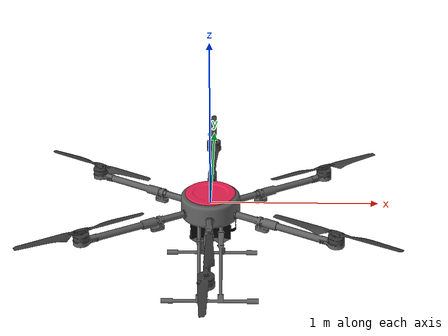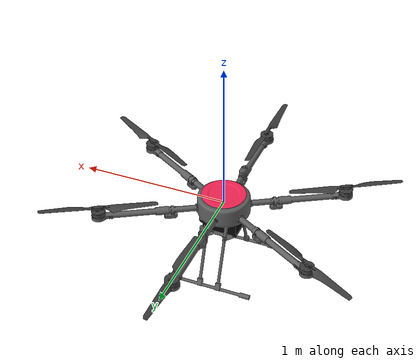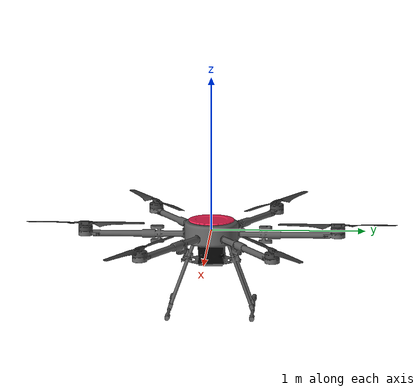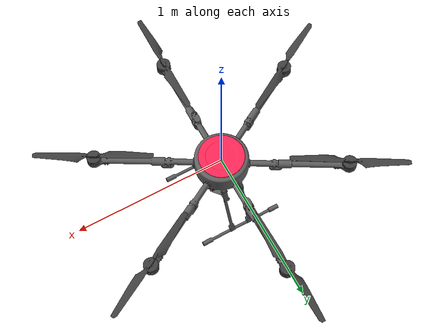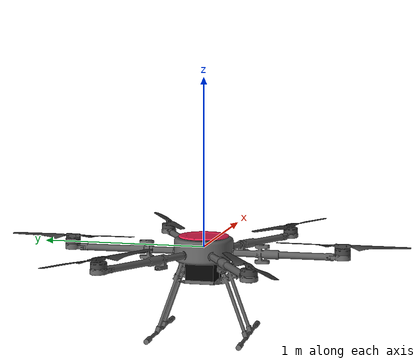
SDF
<sdf version='1.10'>
  <model name='apex'>
    <link name='base_link'>
      <inertial>
        <pose>3.8021336459765633e-18 1.9010668229882809e-18 -0.078047945205479446 0 0 0</pose>
        <mass>14.6</mass>
        <inertia>
          <ixx>0.66679253877643629</ixx>
          <ixy>-5.7811611079981693e-05</ixy>
          <ixz>0.0001125763919399972</ixz>
          <iyy>0.62684588709979616</iyy>
          <iyz>-7.6852716500013487e-06</iyz>
          <izz>0.80883708094223006</izz>
        </inertia>
      </inertial>
      <collision name='base_link_fixed_joint_lump__body_link_collision'>
        <pose>0 0 -0.012699999999999999 0 0 0</pose>
        <geometry>
          <cylinder>
            <length>0.13500000000000001</length>
            <radius>0.17649999999999999</radius>
          </cylinder>
        </geometry>
      </collision>
      <collision name='base_link_fixed_joint_lump__body_link_collision_1'>
        <pose>0 0.27300000000000002 -0.5212 0 1.5707963267948966 0</pose>
        <geometry>
          <cylinder>
            <length>0.58599999999999997</length>
            <radius>0.016</radius>
          </cylinder>
        </geometry>
      </collision>
      <collision name='base_link_fixed_joint_lump__body_link_collision_2'>
        <pose>0.065000000000000002 -0.18433099999999999 -0.27758500000000003 -0.3490658503988659 0 0</pose>
        <geometry>
          <cylinder>
            <length>0.45000000000000001</length>
            <radius>0.01</radius>
          </cylinder>
        </geometry>
      </collision>
      <collision name='base_link_fixed_joint_lump__body_link_collision_3'>
        <pose>-0.065000000000000002 -0.18433099999999999 -0.27758500000000003 -0.3490658503988659 0 0</pose>
        <geometry>
          <cylinder>
            <length>0.45000000000000001</length>
            <radius>0.01</radius>
          </cylinder>
        </geometry>
      </collision>
      <collision name='base_link_fixed_joint_lump__body_link_collision_4'>
        <pose>0 -0.27300000000000002 -0.5212 0 1.5707963267948966 0</pose>
        <geometry>
          <cylinder>
            <length>0.58599999999999997</length>
            <radius>0.016</radius>
          </cylinder>
        </geometry>
      </collision>
      <collision name='base_link_fixed_joint_lump__body_link_collision_5'>
        <pose>0.065000000000000002 0.18433099999999999 -0.27758500000000003 0.3490658503988659 0 0</pose>
        <geometry>
          <cylinder>
            <length>0.45000000000000001</length>
            <radius>0.01</radius>
          </cylinder>
        </geometry>
      </collision>
      <collision name='base_link_fixed_joint_lump__body_link_collision_6'>
        <pose>-0.065000000000000002 0.18433099999999999 -0.27758500000000003 0.3490658503988659 0 0</pose>
        <geometry>
          <cylinder>
            <length>0.45000000000000001</length>
            <radius>0.01</radius>
          </cylinder>
        </geometry>
      </collision>
      <collision name='base_link_fixed_joint_lump__arm_0_collision_7'>
        <pose>0 0.51600000000000001 -0.029999999999999999 1.5707963267948959 0 0</pose>
        <geometry>
          <cylinder>
            <length>0.69999999999999996</length>
            <radius>0.025000000000000001</radius>
          </cylinder>
        </geometry>
      </collision>
      <collision name='base_link_fixed_joint_lump__arm_1_collision_8'>
        <pose>-0.44686910835277027 0.25800000000000012 -0.029999999999999999 1.570796326794897 5.5511151231257827e-17 1.0471975511965981</pose>
        <geometry>
          <cylinder>
            <length>0.69999999999999996</length>
            <radius>0.025000000000000001</radius>
          </cylinder>
        </geometry>
      </collision>
      <collision name='base_link_fixed_joint_lump__arm_2_collision_9'>
        <pose>-0.44686910835277038 -0.2579999999999999 -0.029999999999999999 1.5707963267948972 0 2.0943951023931948</pose>
        <geometry>
          <cylinder>
            <length>0.69999999999999996</length>
            <radius>0.025000000000000001</radius>
          </cylinder>
        </geometry>
      </collision>
      <collision name='base_link_fixed_joint_lump__arm_3_collision_10'>
        <pose>-6.3191774836003421e-17 -0.51600000000000001 -0.029999999999999999 1.5707963267948959 0 3.1415926535897931</pose>
        <geometry>
          <cylinder>
            <length>0.69999999999999996</length>
            <radius>0.025000000000000001</radius>
          </cylinder>
        </geometry>
      </collision>
      <collision name='base_link_fixed_joint_lump__arm_4_collision_11'>
        <pose>0.44686910835277027 -0.25800000000000028 -0.029999999999999999 1.5707963267948957 5.5511151231257827e-17 -2.0943951023931962</pose>
        <geometry>
          <cylinder>
            <length>0.69999999999999996</length>
            <radius>0.025000000000000001</radius>
          </cylinder>
        </geometry>
      </collision>
      <collision name='base_link_fixed_joint_lump__arm_5_collision_12'>
        <pose>0.44686910835277027 0.25800000000000012 -0.029999999999999999 1.570796326794897 -5.5511151231257827e-17 -1.0471975511965981</pose>
        <geometry>
          <cylinder>
            <length>0.69999999999999996</length>
            <radius>0.025000000000000001</radius>
          </cylinder>
        </geometry>
      </collision>
      <collision name='base_link_fixed_joint_lump__battery_link_collision_13'>
        <pose>0 0 -0.14319999999999999 0 0 0</pose>
        <geometry>
          <box>
            <size>0.23699999999999999 0.17199999999999999 0.11600000000000001</size>
          </box>
        </geometry>
      </collision>
      <visual name='base_link_fixed_joint_lump__body_link_visual'>
        <pose>0 0 0 0 0 0</pose>
        <geometry>
          <mesh>
            <scale>1 1 1</scale>
            <uri>model://apex/meshes/apex_core_no_top_mesh.stl</uri>
          </mesh>
        </geometry>
        <material>
          <diffuse>0.37500003 0.37500003 0.37500003 1</diffuse>
          <ambient>0.37500003 0.37500003 0.37500003 1</ambient>
        </material>
      </visual>
      <visual name='base_link_fixed_joint_lump__arm_0_visual_1'>
        <pose>0 0 0 0 0 0</pose>
        <geometry>
          <mesh>
            <scale>1 1 1</scale>
            <uri>model://apex/meshes/apex_arm_1_mesh.stl</uri>
          </mesh>
        </geometry>
        <material>
          <diffuse>0.37500003 0.37500003 0.37500003 1</diffuse>
          <ambient>0.37500003 0.37500003 0.37500003 1</ambient>
        </material>
      </visual>
      <visual name='base_link_fixed_joint_lump__arm_1_visual_2'>
        <pose>0 0 0 0 0 1.0471975511965981</pose>
        <geometry>
          <mesh>
            <scale>1 1 1</scale>
            <uri>model://apex/meshes/apex_arm_2_mesh.stl</uri>
          </mesh>
        </geometry>
        <material>
          <diffuse>0.37500003 0.37500003 0.37500003 1</diffuse>
          <ambient>0.37500003 0.37500003 0.37500003 1</ambient>
        </material>
      </visual>
      <visual name='base_link_fixed_joint_lump__arm_2_visual_3'>
        <pose>0 0 0 0 0 2.0943951023931948</pose>
        <geometry>
          <mesh>
            <scale>1 1 1</scale>
            <uri>model://apex/meshes/apex_arm_2_mesh.stl</uri>
          </mesh>
        </geometry>
        <material>
          <diffuse>0.37500003 0.37500003 0.37500003 1</diffuse>
          <ambient>0.37500003 0.37500003 0.37500003 1</ambient>
        </material>
      </visual>
      <visual name='base_link_fixed_joint_lump__arm_3_visual_4'>
        <pose>0 0 0 0 0 3.1415926535897931</pose>
        <geometry>
          <mesh>
            <scale>1 1 1</scale>
            <uri>model://apex/meshes/apex_arm_1_mesh.stl</uri>
          </mesh>
        </geometry>
        <material>
          <diffuse>0.37500003 0.37500003 0.37500003 1</diffuse>
          <ambient>0.37500003 0.37500003 0.37500003 1</ambient>
        </material>
      </visual>
      <visual name='base_link_fixed_joint_lump__arm_4_visual_5'>
        <pose>0 0 0 0 0 -2.0943951023931962</pose>
        <geometry>
          <mesh>
            <scale>1 1 1</scale>
            <uri>model://apex/meshes/apex_arm_2_mesh.stl</uri>
          </mesh>
        </geometry>
        <material>
          <diffuse>0.37500003 0.37500003 0.37500003 1</diffuse>
          <ambient>0.37500003 0.37500003 0.37500003 1</ambient>
        </material>
      </visual>
      <visual name='base_link_fixed_joint_lump__arm_5_visual_6'>
        <pose>0 0 0 0 0 -1.0471975511965981</pose>
        <geometry>
          <mesh>
            <scale>1 1 1</scale>
            <uri>model://apex/meshes/apex_arm_2_mesh.stl</uri>
          </mesh>
        </geometry>
        <material>
          <diffuse>0.37500003 0.37500003 0.37500003 1</diffuse>
          <ambient>0.37500003 0.37500003 0.37500003 1</ambient>
        </material>
      </visual>
      <visual name='base_link_fixed_joint_lump__battery_link_visual_7'>
        <pose>0 0 0 0 0 0</pose>
        <geometry>
          <mesh>
            <scale>1 1 1</scale>
            <uri>model://apex/meshes/apex_battery_mesh.stl</uri>
          </mesh>
        </geometry>
        <material>
          <diffuse>0.0125000002 0.0125000002 0.0125000002 1</diffuse>
          <ambient>0.0125000002 0.0125000002 0.0125000002 1</ambient>
        </material>
      </visual>
      <visual name='base_link_fixed_joint_lump__top_link_visual_8'>
        <pose>0 0 0 0 0 0</pose>
        <geometry>
          <mesh>
            <scale>1 1 1</scale>
            <uri>model://apex/meshes/apex_core_top_mesh.stl</uri>
          </mesh>
        </geometry>
        <material>
          <diffuse>1 0.147500008 0.347499996 1</diffuse>
          <ambient>1 0.147500008 0.347499996 1</ambient>
        </material>
      </visual>
      <sensor name='air_pressure_sensor' type='air_pressure'>
        <always_on>true</always_on>
        <update_rate>50</update_rate>
        <air_pressure>
          <pressure>
            <noise type='gaussian'>
              <mean>0</mean>
              <stddev>0.01</stddev>
            </noise>
          </pressure>
        </air_pressure>
      </sensor>
      <sensor name='imu_sensor' type='imu'>
        <always_on>true</always_on>
        <update_rate>250</update_rate>
        <imu>
          <angular_velocity>
            <x>
              <noise type='gaussian'>
                <mean>0</mean>
                <stddev>0.00018665000000000001</stddev>
                <dynamic_bias_stddev>3.8785000000000002e-05</dynamic_bias_stddev>
                <dynamic_bias_correlation_time>1000</dynamic_bias_correlation_time>
              </noise>
            </x>
            <y>
              <noise type='gaussian'>
                <mean>0</mean>
                <stddev>0.00018665000000000001</stddev>
                <dynamic_bias_stddev>3.8785000000000002e-05</dynamic_bias_stddev>
                <dynamic_bias_correlation_time>1000</dynamic_bias_correlation_time>
              </noise>
            </y>
            <z>
              <noise type='gaussian'>
                <mean>0</mean>
                <stddev>0.00018665000000000001</stddev>
                <dynamic_bias_stddev>3.8785000000000002e-05</dynamic_bias_stddev>
                <dynamic_bias_correlation_time>1000</dynamic_bias_correlation_time>
              </noise>
            </z>
          </angular_velocity>
          <linear_acceleration>
            <x>
              <noise type='gaussian'>
                <mean>0</mean>
                <stddev>0.0018600000000000001</stddev>
                <dynamic_bias_stddev>0.0060000000000000001</dynamic_bias_stddev>
                <dynamic_bias_correlation_time>300</dynamic_bias_correlation_time>
              </noise>
            </x>
            <y>
              <noise type='gaussian'>
                <mean>0</mean>
                <stddev>0.0018600000000000001</stddev>
                <dynamic_bias_stddev>0.0060000000000000001</dynamic_bias_stddev>
                <dynamic_bias_correlation_time>300</dynamic_bias_correlation_time>
              </noise>
            </y>
            <z>
              <noise type='gaussian'>
                <mean>0</mean>
                <stddev>0.0018600000000000001</stddev>
                <dynamic_bias_stddev>0.0060000000000000001</dynamic_bias_stddev>
                <dynamic_bias_correlation_time>300</dynamic_bias_correlation_time>
              </noise>
            </z>
          </linear_acceleration>
        </imu>
      </sensor>
      <sensor name='navsat_sensor' type='navsat'>
        <always_on>true</always_on>
        <update_rate>30</update_rate>
      </sensor>
    </link>
    <joint name='rotor_0_joint' type='revolute'>
      <pose relative_to='base_link'>0 -0.82289999999999996 -0.012999999999999999 0 0 0</pose>
      <parent>base_link</parent>
      <child>rotor_0</child>
      <axis>
        <xyz>0 0 1</xyz>
        <limit>
          <lower>-inf</lower>
          <upper>inf</upper>
        </limit>
        <dynamics>
          <spring_reference>0</spring_reference>
          <spring_stiffness>0</spring_stiffness>
        </dynamics>
      </axis>
    </joint>
    <link name='rotor_0'>
      <pose relative_to='rotor_0_joint'>0 0 0 0 0 0</pose>
      <inertial>
        <pose>0 0 0.00099999999999999915 0 0 0</pose>
        <mass>1.1000000000000001</mass>
        <inertia>
          <ixx>0.0038293255315799998</ixx>
          <ixy>-0.00012384252740999999</ixy>
          <ixz>2.1895e-10</ixz>
          <iyy>0.00037573441417000002</iyy>
          <iyz>-1.0796700000000001e-09</iyz>
          <izz>0.0039646867139900002</izz>
        </inertia>
      </inertial>
      <collision name='rotor_0_collision'>
        <pose>0 0 0.050000000000000003 0 0 0</pose>
        <geometry>
          <cylinder>
            <length>0.029000000000000001</length>
            <radius>0.38800000000000001</radius>
          </cylinder>
        </geometry>
      </collision>
      <visual name='rotor_0_visual'>
        <pose>0 0.82289999999999996 0.012999999999999999 0 0 0</pose>
        <geometry>
          <mesh>
            <scale>1 1 1</scale>
            <uri>model://apex/meshes/apex_propeller_ccw_mesh.stl</uri>
          </mesh>
        </geometry>
        <material>
          <diffuse>0.25 0.25 0.25 1</diffuse>
          <ambient>0.25 0.25 0.25 1</ambient>
        </material>
      </visual>
    </link>
    <joint name='rotor_1_joint' type='revolute'>
      <pose relative_to='base_link'>0.71265230477421448 -0.41145000000000009 -0.012999999999999999 0 0 1.0471975511965981</pose>
      <parent>base_link</parent>
      <child>rotor_1</child>
      <axis>
        <xyz>0 0 1</xyz>
        <limit>
          <lower>-inf</lower>
          <upper>inf</upper>
        </limit>
        <dynamics>
          <spring_reference>0</spring_reference>
          <spring_stiffness>0</spring_stiffness>
        </dynamics>
      </axis>
    </joint>
    <link name='rotor_1'>
      <pose relative_to='rotor_1_joint'>0 0 0 0 0 0</pose>
      <inertial>
        <pose>0 0 0.00099999999999999915 0 0 0</pose>
        <mass>1.1000000000000001</mass>
        <inertia>
          <ixx>0.0038283295721699999</ixx>
          <ixy>0.0001239599229</ixy>
          <ixz>4.6767699999999998e-09</ixz>
          <iyy>0.00037310546281</iyy>
          <iyz>-7.8008489999999997e-08</iyz>
          <izz>0.0039663659791299996</izz>
        </inertia>
      </inertial>
      <collision name='rotor_1_collision'>
        <pose>0 0 0.050000000000000003 0 0 0</pose>
        <geometry>
          <cylinder>
            <length>0.029000000000000001</length>
            <radius>0.38800000000000001</radius>
          </cylinder>
        </geometry>
      </collision>
      <visual name='rotor_1_visual'>
        <pose>0 0.82289999999999996 0.012999999999999999 0 0 0</pose>
        <geometry>
          <mesh>
            <scale>1 1 1</scale>
            <uri>model://apex/meshes/apex_propeller_cw_mesh.stl</uri>
          </mesh>
        </geometry>
        <material>
          <diffuse>0.25 0.25 0.25 1</diffuse>
          <ambient>0.25 0.25 0.25 1</ambient>
        </material>
      </visual>
    </link>
    <joint name='rotor_2_joint' type='revolute'>
      <pose relative_to='base_link'>0.7126523047742146 0.41144999999999993 -0.012999999999999999 0 0 2.0943951023931948</pose>
      <parent>base_link</parent>
      <child>rotor_2</child>
      <axis>
        <xyz>0 0 1</xyz>
        <limit>
          <lower>-inf</lower>
          <upper>inf</upper>
        </limit>
        <dynamics>
          <spring_reference>0</spring_reference>
          <spring_stiffness>0</spring_stiffness>
        </dynamics>
      </axis>
    </joint>
    <link name='rotor_2'>
      <pose relative_to='rotor_2_joint'>0 0 0 0 0 0</pose>
      <inertial>
        <pose>0 0 0.00099999999999999915 0 0 0</pose>
        <mass>1.1000000000000001</mass>
        <inertia>
          <ixx>0.0038293255315799998</ixx>
          <ixy>-0.00012384252740999999</ixy>
          <ixz>2.1895e-10</ixz>
          <iyy>0.00037573441417000002</iyy>
          <iyz>-1.0796700000000001e-09</iyz>
          <izz>0.0039646867139900002</izz>
        </inertia>
      </inertial>
      <collision name='rotor_2_collision'>
        <pose>0 0 0.050000000000000003 0 0 0</pose>
        <geometry>
          <cylinder>
            <length>0.029000000000000001</length>
            <radius>0.38800000000000001</radius>
          </cylinder>
        </geometry>
      </collision>
      <visual name='rotor_2_visual'>
        <pose>0 0.82289999999999996 0.012999999999999999 0 0 0</pose>
        <geometry>
          <mesh>
            <scale>1 1 1</scale>
            <uri>model://apex/meshes/apex_propeller_ccw_mesh.stl</uri>
          </mesh>
        </geometry>
        <material>
          <diffuse>0.25 0.25 0.25 1</diffuse>
          <ambient>0.25 0.25 0.25 1</ambient>
        </material>
      </visual>
    </link>
    <joint name='rotor_3_joint' type='revolute'>
      <pose relative_to='base_link'>1.007761851018357e-16 0.82289999999999996 -0.012999999999999999 0 0 3.1415926535897931</pose>
      <parent>base_link</parent>
      <child>rotor_3</child>
      <axis>
        <xyz>0 0 1</xyz>
        <limit>
          <lower>-inf</lower>
          <upper>inf</upper>
        </limit>
        <dynamics>
          <spring_reference>0</spring_reference>
          <spring_stiffness>0</spring_stiffness>
        </dynamics>
      </axis>
    </joint>
    <link name='rotor_3'>
      <pose relative_to='rotor_3_joint'>0 0 0 0 0 0</pose>
      <inertial>
        <pose>0 0 0.00099999999999999915 0 0 0</pose>
        <mass>1.1000000000000001</mass>
        <inertia>
          <ixx>0.0038283295721699999</ixx>
          <ixy>0.0001239599229</ixy>
          <ixz>4.6767699999999998e-09</ixz>
          <iyy>0.00037310546281</iyy>
          <iyz>-7.8008489999999997e-08</iyz>
          <izz>0.0039663659791299996</izz>
        </inertia>
      </inertial>
      <collision name='rotor_3_collision'>
        <pose>0 0 0.050000000000000003 0 0 0</pose>
        <geometry>
          <cylinder>
            <length>0.029000000000000001</length>
            <radius>0.38800000000000001</radius>
          </cylinder>
        </geometry>
      </collision>
      <visual name='rotor_3_visual'>
        <pose>0 0.82289999999999996 0.012999999999999999 0 0 0</pose>
        <geometry>
          <mesh>
            <scale>1 1 1</scale>
            <uri>model://apex/meshes/apex_propeller_cw_mesh.stl</uri>
          </mesh>
        </geometry>
        <material>
          <diffuse>0.25 0.25 0.25 1</diffuse>
          <ambient>0.25 0.25 0.25 1</ambient>
        </material>
      </visual>
    </link>
    <joint name='rotor_4_joint' type='revolute'>
      <pose relative_to='base_link'>-0.71265230477421448 0.41145000000000048 -0.012999999999999999 0 0 -2.0943951023931962</pose>
      <parent>base_link</parent>
      <child>rotor_4</child>
      <axis>
        <xyz>0 0 1</xyz>
        <limit>
          <lower>-inf</lower>
          <upper>inf</upper>
        </limit>
        <dynamics>
          <spring_reference>0</spring_reference>
          <spring_stiffness>0</spring_stiffness>
        </dynamics>
      </axis>
    </joint>
    <link name='rotor_4'>
      <pose relative_to='rotor_4_joint'>0 0 0 0 0 0</pose>
      <inertial>
        <pose>0 0 0.00099999999999999915 0 0 0</pose>
        <mass>1.1000000000000001</mass>
        <inertia>
          <ixx>0.0038293255315799998</ixx>
          <ixy>-0.00012384252740999999</ixy>
          <ixz>2.1895e-10</ixz>
          <iyy>0.00037573441417000002</iyy>
          <iyz>-1.0796700000000001e-09</iyz>
          <izz>0.0039646867139900002</izz>
        </inertia>
      </inertial>
      <collision name='rotor_4_collision'>
        <pose>0 0 0.050000000000000003 0 0 0</pose>
        <geometry>
          <cylinder>
            <length>0.029000000000000001</length>
            <radius>0.38800000000000001</radius>
          </cylinder>
        </geometry>
      </collision>
      <visual name='rotor_4_visual'>
        <pose>0 0.82289999999999996 0.012999999999999999 0 0 0</pose>
        <geometry>
          <mesh>
            <scale>1 1 1</scale>
            <uri>model://apex/meshes/apex_propeller_ccw_mesh.stl</uri>
          </mesh>
        </geometry>
        <material>
          <diffuse>0.25 0.25 0.25 1</diffuse>
          <ambient>0.25 0.25 0.25 1</ambient>
        </material>
      </visual>
    </link>
    <joint name='rotor_5_joint' type='revolute'>
      <pose relative_to='base_link'>-0.71265230477421448 -0.41145000000000009 -0.012999999999999999 0 0 -1.0471975511965981</pose>
      <parent>base_link</parent>
      <child>rotor_5</child>
      <axis>
        <xyz>0 0 1</xyz>
        <limit>
          <lower>-inf</lower>
          <upper>inf</upper>
        </limit>
        <dynamics>
          <spring_reference>0</spring_reference>
          <spring_stiffness>0</spring_stiffness>
        </dynamics>
      </axis>
    </joint>
    <link name='rotor_5'>
      <pose relative_to='rotor_5_joint'>0 0 0 0 0 0</pose>
      <inertial>
        <pose>0 0 0.00099999999999999915 0 0 0</pose>
        <mass>1.1000000000000001</mass>
        <inertia>
          <ixx>0.0038283295721699999</ixx>
          <ixy>0.0001239599229</ixy>
          <ixz>4.6767699999999998e-09</ixz>
          <iyy>0.00037310546281</iyy>
          <iyz>-7.8008489999999997e-08</iyz>
          <izz>0.0039663659791299996</izz>
        </inertia>
      </inertial>
      <collision name='rotor_5_collision'>
        <pose>0 0 0.050000000000000003 0 0 0</pose>
        <geometry>
          <cylinder>
            <length>0.029000000000000001</length>
            <radius>0.38800000000000001</radius>
          </cylinder>
        </geometry>
      </collision>
      <visual name='rotor_5_visual'>
        <pose>0 0.82289999999999996 0.012999999999999999 0 0 0</pose>
        <geometry>
          <mesh>
            <scale>1 1 1</scale>
            <uri>model://apex/meshes/apex_propeller_cw_mesh.stl</uri>
          </mesh>
        </geometry>
        <material>
          <diffuse>0.25 0.25 0.25 1</diffuse>
          <ambient>0.25 0.25 0.25 1</ambient>
        </material>
      </visual>
    </link>
    <plugin name='gz::sim::systems::MulticopterMotorModel' filename='gz-sim-multicopter-motor-model-system'>
      <jointName>rotor_0_joint</jointName>
      <linkName>rotor_0</linkName>
      <turningDirection>ccw</turningDirection>
      <timeConstantUp>0.0125</timeConstantUp>
      <timeConstantDown>0.025</timeConstantDown>
      <maxRotVelocity>1000.0</maxRotVelocity>
      <motorConstant>8.54858e-05</motorConstant>
      <momentConstant>0.16</momentConstant>
      <commandSubTopic>command/motor_speed</commandSubTopic>
      <motorNumber>0</motorNumber>
      <rotorDragCoefficient>8.06428e-05</rotorDragCoefficient>
      <rollingMomentCoefficient>1e-06</rollingMomentCoefficient>
      <rotorVelocitySlowdownSim>10</rotorVelocitySlowdownSim>
      <motorType>velocity</motorType>
    </plugin>
    <plugin name='gz::sim::systems::MulticopterMotorModel' filename='gz-sim-multicopter-motor-model-system'>
      <jointName>rotor_1_joint</jointName>
      <linkName>rotor_1</linkName>
      <turningDirection>cw</turningDirection>
      <timeConstantUp>0.0125</timeConstantUp>
      <timeConstantDown>0.025</timeConstantDown>
      <maxRotVelocity>1000.0</maxRotVelocity>
      <motorConstant>8.54858e-05</motorConstant>
      <momentConstant>0.16</momentConstant>
      <commandSubTopic>command/motor_speed</commandSubTopic>
      <motorNumber>1</motorNumber>
      <rotorDragCoefficient>8.06428e-05</rotorDragCoefficient>
      <rollingMomentCoefficient>1e-06</rollingMomentCoefficient>
      <rotorVelocitySlowdownSim>10</rotorVelocitySlowdownSim>
      <motorType>velocity</motorType>
    </plugin>
    <plugin name='gz::sim::systems::MulticopterMotorModel' filename='gz-sim-multicopter-motor-model-system'>
      <jointName>rotor_2_joint</jointName>
      <linkName>rotor_2</linkName>
      <turningDirection>ccw</turningDirection>
      <timeConstantUp>0.0125</timeConstantUp>
      <timeConstantDown>0.025</timeConstantDown>
      <maxRotVelocity>1000.0</maxRotVelocity>
      <motorConstant>8.54858e-05</motorConstant>
      <momentConstant>0.16</momentConstant>
      <commandSubTopic>command/motor_speed</commandSubTopic>
      <motorNumber>2</motorNumber>
      <rotorDragCoefficient>8.06428e-05</rotorDragCoefficient>
      <rollingMomentCoefficient>1e-06</rollingMomentCoefficient>
      <rotorVelocitySlowdownSim>10</rotorVelocitySlowdownSim>
      <motorType>velocity</motorType>
    </plugin>
    <plugin name='gz::sim::systems::MulticopterMotorModel' filename='gz-sim-multicopter-motor-model-system'>
      <jointName>rotor_3_joint</jointName>
      <linkName>rotor_3</linkName>
      <turningDirection>cw</turningDirection>
      <timeConstantUp>0.0125</timeConstantUp>
      <timeConstantDown>0.025</timeConstantDown>
      <maxRotVelocity>1000.0</maxRotVelocity>
      <motorConstant>8.54858e-05</motorConstant>
      <momentConstant>0.16</momentConstant>
      <commandSubTopic>command/motor_speed</commandSubTopic>
      <motorNumber>3</motorNumber>
      <rotorDragCoefficient>8.06428e-05</rotorDragCoefficient>
      <rollingMomentCoefficient>1e-06</rollingMomentCoefficient>
      <rotorVelocitySlowdownSim>10</rotorVelocitySlowdownSim>
      <motorType>velocity</motorType>
    </plugin>
    <plugin name='gz::sim::systems::MulticopterMotorModel' filename='gz-sim-multicopter-motor-model-system'>
      <jointName>rotor_4_joint</jointName>
      <linkName>rotor_4</linkName>
      <turningDirection>ccw</turningDirection>
      <timeConstantUp>0.0125</timeConstantUp>
      <timeConstantDown>0.025</timeConstantDown>
      <maxRotVelocity>1000.0</maxRotVelocity>
      <motorConstant>8.54858e-05</motorConstant>
      <momentConstant>0.16</momentConstant>
      <commandSubTopic>command/motor_speed</commandSubTopic>
      <motorNumber>4</motorNumber>
      <rotorDragCoefficient>8.06428e-05</rotorDragCoefficient>
      <rollingMomentCoefficient>1e-06</rollingMomentCoefficient>
      <rotorVelocitySlowdownSim>10</rotorVelocitySlowdownSim>
      <motorType>velocity</motorType>
    </plugin>
    <plugin name='gz::sim::systems::MulticopterMotorModel' filename='gz-sim-multicopter-motor-model-system'>
      <jointName>rotor_5_joint</jointName>
      <linkName>rotor_5</linkName>
      <turningDirection>cw</turningDirection>
      <timeConstantUp>0.0125</timeConstantUp>
      <timeConstantDown>0.025</timeConstantDown>
      <maxRotVelocity>1000.0</maxRotVelocity>
      <motorConstant>8.54858e-05</motorConstant>
      <momentConstant>0.16</momentConstant>
      <commandSubTopic>command/motor_speed</commandSubTopic>
      <motorNumber>5</motorNumber>
      <rotorDragCoefficient>8.06428e-05</rotorDragCoefficient>
      <rollingMomentCoefficient>1e-06</rollingMomentCoefficient>
      <rotorVelocitySlowdownSim>10</rotorVelocitySlowdownSim>
      <motorType>velocity</motorType>
    </plugin>
    <plugin name='gz::sim::systems::JointStatePublisher' filename='gz-sim-joint-state-publisher-system'>
      <topic>apex/joint_states/</topic>
    </plugin>
    <plugin name='gz::sim::systems::OdometryPublisher' filename='gz-sim-odometry-publisher-system'>
      <odom_frame>world</odom_frame>
      <robot_base_frame>base_link</robot_base_frame>
      <odom_publish_frequency>100</odom_publish_frequency>
      <odom_topic>/apex/odometry</odom_topic>
      <odom_covariance_topic>/apex/odometry_with_covariance</odom_covariance_topic>
      <dimensions>3</dimensions>
      <gaussian_noise>0</gaussian_noise>
    </plugin>
    <frame name='arm_0_fix' attached_to='body_link'>
      <pose>0 0 0 0 0 0</pose>
    </frame>
    <frame name='arm_0' attached_to='arm_0_fix'>
      <pose>0 0 0 0 0 0</pose>
    </frame>
    <frame name='arm_1_fix' attached_to='body_link'>
      <pose>0 0 0 0 0 1.0471975511965981</pose>
    </frame>
    <frame name='arm_1' attached_to='arm_1_fix'>
      <pose>0 0 0 0 0 0</pose>
    </frame>
    <frame name='arm_2_fix' attached_to='body_link'>
      <pose>0 0 0 0 0 2.0943951023931948</pose>
    </frame>
    <frame name='arm_2' attached_to='arm_2_fix'>
      <pose>0 0 0 0 0 0</pose>
    </frame>
    <frame name='arm_3_fix' attached_to='body_link'>
      <pose>0 0 0 0 0 3.1415926535897931</pose>
    </frame>
    <frame name='arm_3' attached_to='arm_3_fix'>
      <pose>0 0 0 0 0 0</pose>
    </frame>
    <frame name='arm_4_fix' attached_to='body_link'>
      <pose>0 0 0 0 0 -2.0943951023931962</pose>
    </frame>
    <frame name='arm_4' attached_to='arm_4_fix'>
      <pose>0 0 0 0 0 0</pose>
    </frame>
    <frame name='arm_5_fix' attached_to='body_link'>
      <pose>0 0 0 0 0 -1.0471975511965981</pose>
    </frame>
    <frame name='arm_5' attached_to='arm_5_fix'>
      <pose>0 0 0 0 0 0</pose>
    </frame>
    <frame name='battery_fix' attached_to='body_link'>
      <pose>0 0 0 0 0 0</pose>
    </frame>
    <frame name='battery_link' attached_to='battery_fix'>
      <pose>0 0 0 0 0 0</pose>
    </frame>
    <frame name='top_fix' attached_to='body_link'>
      <pose>0 0 0 0 0 0</pose>
    </frame>
    <frame name='top_link' attached_to='top_fix'>
      <pose>0 0 0 0 0 0</pose>
    </frame>
    <frame name='odom_fix' attached_to='base_link'>
      <pose>0 0 0 0 0 0</pose>
    </frame>
    <frame name='body_link' attached_to='odom_fix'>
      <pose>0 0 0 0 0 0</pose>
    </frame>
  </model>
</sdf>
